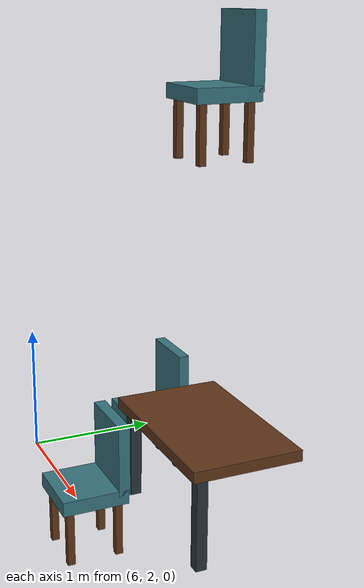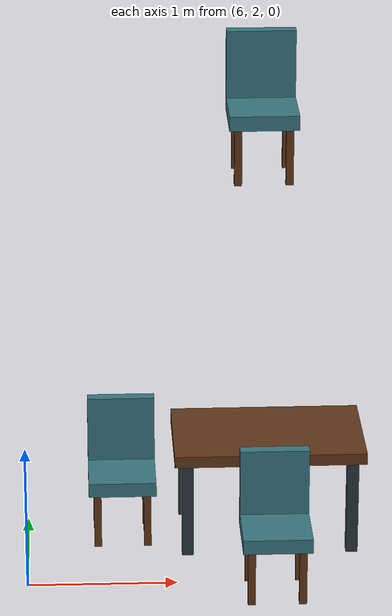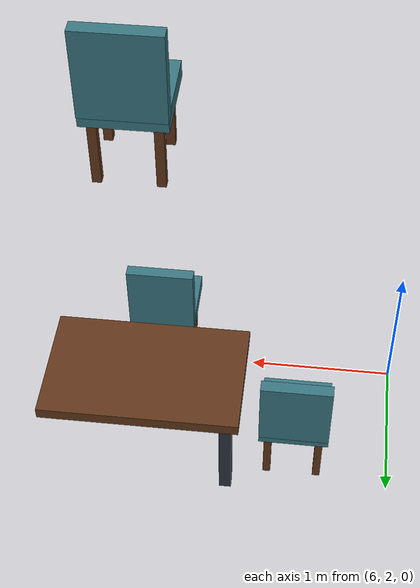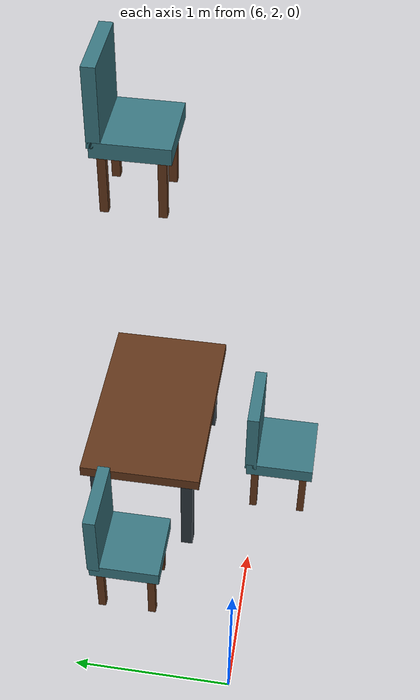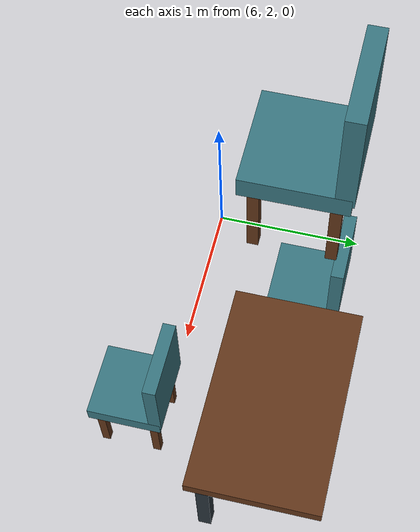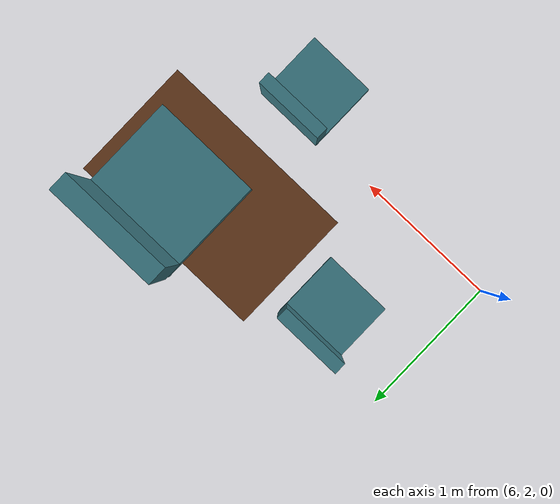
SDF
<sdf version="1.7">
 <model name="home_indoor">
  <static>true</static>
  <link name="dining_top">
   <pose>7.65 2.75 0.72 0 0 0</pose>
   <collision name="dining_top_collision">
    <geometry><box><size>1.3 0.8 0.08</size></box></geometry>
    <surface><friction><ode><mu>1.0</mu><mu2>1.0</mu2></ode></friction></surface>
   </collision>
   <visual name="dining_top_visual">
    <geometry><box><size>1.3 0.8 0.08</size></box></geometry>
    <material><ambient>0.38 0.21 0.10 1</ambient><diffuse>0.38 0.21 0.10 1</diffuse></material>
   </visual>
  </link>
  <link name="dining_leg_-1_-1">
   <pose>7.09 2.44 0.34 0 0 0</pose>
   <collision name="dining_leg_-1_-1_collision">
    <geometry><box><size>0.08 0.08 0.68</size></box></geometry>
    <surface><friction><ode><mu>1.0</mu><mu2>1.0</mu2></ode></friction></surface>
   </collision>
   <visual name="dining_leg_-1_-1_visual">
    <geometry><box><size>0.08 0.08 0.68</size></box></geometry>
    <material><ambient>0.16 0.20 0.23 1</ambient><diffuse>0.16 0.20 0.23 1</diffuse></material>
   </visual>
  </link>
  <link name="dining_leg_-1_1">
   <pose>7.09 3.06 0.34 0 0 0</pose>
   <collision name="dining_leg_-1_1_collision">
    <geometry><box><size>0.08 0.08 0.68</size></box></geometry>
    <surface><friction><ode><mu>1.0</mu><mu2>1.0</mu2></ode></friction></surface>
   </collision>
   <visual name="dining_leg_-1_1_visual">
    <geometry><box><size>0.08 0.08 0.68</size></box></geometry>
    <material><ambient>0.16 0.20 0.23 1</ambient><diffuse>0.16 0.20 0.23 1</diffuse></material>
   </visual>
  </link>
  <link name="dining_leg_1_-1">
   <pose>8.21 2.44 0.34 0 0 0</pose>
   <collision name="dining_leg_1_-1_collision">
    <geometry><box><size>0.08 0.08 0.68</size></box></geometry>
    <surface><friction><ode><mu>1.0</mu><mu2>1.0</mu2></ode></friction></surface>
   </collision>
   <visual name="dining_leg_1_-1_visual">
    <geometry><box><size>0.08 0.08 0.68</size></box></geometry>
    <material><ambient>0.16 0.20 0.23 1</ambient><diffuse>0.16 0.20 0.23 1</diffuse></material>
   </visual>
  </link>
  <link name="dining_chair_0_seat">
   <pose>6.65 2.75 0.44 0 0 0</pose>
   <collision name="dining_chair_0_seat_collision">
    <geometry><box><size>0.46 0.46 0.1</size></box></geometry>
    <surface><friction><ode><mu>1.0</mu><mu2>1.0</mu2></ode></friction></surface>
   </collision>
   <visual name="dining_chair_0_seat_visual">
    <geometry><box><size>0.46 0.46 0.1</size></box></geometry>
    <material><ambient>0.22 0.46 0.50 1</ambient><diffuse>0.22 0.46 0.50 1</diffuse></material>
   </visual>
  </link>
  <link name="dining_chair_0_back">
   <pose>6.65 2.95 0.7 0 0 0</pose>
   <collision name="dining_chair_0_back_collision">
    <geometry><box><size>0.46 0.08 0.5</size></box></geometry>
    <surface><friction><ode><mu>1.0</mu><mu2>1.0</mu2></ode></friction></surface>
   </collision>
   <visual name="dining_chair_0_back_visual">
    <geometry><box><size>0.46 0.08 0.5</size></box></geometry>
    <material><ambient>0.22 0.46 0.50 1</ambient><diffuse>0.22 0.46 0.50 1</diffuse></material>
   </visual>
  </link>
  <link name="dining_chair_0_leg_-1_-1">
   <pose>6.48 2.58 0.2 0 0 0</pose>
   <collision name="dining_chair_0_leg_-1_-1_collision">
    <geometry><box><size>0.05 0.05 0.4</size></box></geometry>
    <surface><friction><ode><mu>1.0</mu><mu2>1.0</mu2></ode></friction></surface>
   </collision>
   <visual name="dining_chair_0_leg_-1_-1_visual">
    <geometry><box><size>0.05 0.05 0.4</size></box></geometry>
    <material><ambient>0.38 0.21 0.10 1</ambient><diffuse>0.38 0.21 0.10 1</diffuse></material>
   </visual>
  </link>
  <link name="dining_chair_0_leg_-1_1">
   <pose>6.48 2.92 0.2 0 0 0</pose>
   <collision name="dining_chair_0_leg_-1_1_collision">
    <geometry><box><size>0.05 0.05 0.4</size></box></geometry>
    <surface><friction><ode><mu>1.0</mu><mu2>1.0</mu2></ode></friction></surface>
   </collision>
   <visual name="dining_chair_0_leg_-1_1_visual">
    <geometry><box><size>0.05 0.05 0.4</size></box></geometry>
    <material><ambient>0.38 0.21 0.10 1</ambient><diffuse>0.38 0.21 0.10 1</diffuse></material>
   </visual>
  </link>
  <link name="dining_chair_0_leg_1_-1">
   <pose>6.82 2.58 0.2 0 0 0</pose>
   <collision name="dining_chair_0_leg_1_-1_collision">
    <geometry><box><size>0.05 0.05 0.4</size></box></geometry>
    <surface><friction><ode><mu>1.0</mu><mu2>1.0</mu2></ode></friction></surface>
   </collision>
   <visual name="dining_chair_0_leg_1_-1_visual">
    <geometry><box><size>0.05 0.05 0.4</size></box></geometry>
    <material><ambient>0.38 0.21 0.10 1</ambient><diffuse>0.38 0.21 0.10 1</diffuse></material>
   </visual>
  </link>
  <link name="dining_chair_0_leg_1_1">
   <pose>6.82 2.92 0.2 0 0 0</pose>
   <collision name="dining_chair_0_leg_1_1_collision">
    <geometry><box><size>0.05 0.05 0.4</size></box></geometry>
    <surface><friction><ode><mu>1.0</mu><mu2>1.0</mu2></ode></friction></surface>
   </collision>
   <visual name="dining_chair_0_leg_1_1_visual">
    <geometry><box><size>0.05 0.05 0.4</size></box></geometry>
    <material><ambient>0.38 0.21 0.10 1</ambient><diffuse>0.38 0.21 0.10 1</diffuse></material>
   </visual>
  </link>
  <link name="dining_chair_2_seat">
   <pose>7.65 1.85 0.44 0 0 0</pose>
   <collision name="dining_chair_2_seat_collision">
    <geometry><box><size>0.46 0.46 0.1</size></box></geometry>
    <surface><friction><ode><mu>1.0</mu><mu2>1.0</mu2></ode></friction></surface>
   </collision>
   <visual name="dining_chair_2_seat_visual">
    <geometry><box><size>0.46 0.46 0.1</size></box></geometry>
    <material><ambient>0.22 0.46 0.50 1</ambient><diffuse>0.22 0.46 0.50 1</diffuse></material>
   </visual>
  </link>
  <link name="dining_chair_2_back">
   <pose>7.65 2.05 0.7 0 0 0</pose>
   <collision name="dining_chair_2_back_collision">
    <geometry><box><size>0.46 0.08 0.5</size></box></geometry>
    <surface><friction><ode><mu>1.0</mu><mu2>1.0</mu2></ode></friction></surface>
   </collision>
   <visual name="dining_chair_2_back_visual">
    <geometry><box><size>0.46 0.08 0.5</size></box></geometry>
    <material><ambient>0.22 0.46 0.50 1</ambient><diffuse>0.22 0.46 0.50 1</diffuse></material>
   </visual>
  </link>
  <link name="dining_chair_2_leg_-1_-1">
   <pose>7.48 1.68 0.2 0 0 0</pose>
   <collision name="dining_chair_2_leg_-1_-1_collision">
    <geometry><box><size>0.05 0.05 0.4</size></box></geometry>
    <surface><friction><ode><mu>1.0</mu><mu2>1.0</mu2></ode></friction></surface>
   </collision>
   <visual name="dining_chair_2_leg_-1_-1_visual">
    <geometry><box><size>0.05 0.05 0.4</size></box></geometry>
    <material><ambient>0.38 0.21 0.10 1</ambient><diffuse>0.38 0.21 0.10 1</diffuse></material>
   </visual>
  </link>
  <link name="dining_chair_2_leg_-1_1">
   <pose>7.48 2.02 0.2 0 0 0</pose>
   <collision name="dining_chair_2_leg_-1_1_collision">
    <geometry><box><size>0.05 0.05 0.4</size></box></geometry>
    <surface><friction><ode><mu>1.0</mu><mu2>1.0</mu2></ode></friction></surface>
   </collision>
   <visual name="dining_chair_2_leg_-1_1_visual">
    <geometry><box><size>0.05 0.05 0.4</size></box></geometry>
    <material><ambient>0.38 0.21 0.10 1</ambient><diffuse>0.38 0.21 0.10 1</diffuse></material>
   </visual>
  </link>
  <link name="dining_chair_2_leg_1_-1">
   <pose>7.82 1.68 0.2 0 0 0</pose>
   <collision name="dining_chair_2_leg_1_-1_collision">
    <geometry><box><size>0.05 0.05 0.4</size></box></geometry>
    <surface><friction><ode><mu>1.0</mu><mu2>1.0</mu2></ode></friction></surface>
   </collision>
   <visual name="dining_chair_2_leg_1_-1_visual">
    <geometry><box><size>0.05 0.05 0.4</size></box></geometry>
    <material><ambient>0.38 0.21 0.10 1</ambient><diffuse>0.38 0.21 0.10 1</diffuse></material>
   </visual>
  </link>
  <link name="dining_chair_2_leg_1_1">
   <pose>7.82 2.02 0.2 0 0 0</pose>
   <collision name="dining_chair_2_leg_1_1_collision">
    <geometry><box><size>0.05 0.05 0.4</size></box></geometry>
    <surface><friction><ode><mu>1.0</mu><mu2>1.0</mu2></ode></friction></surface>
   </collision>
   <visual name="dining_chair_2_leg_1_1_visual">
    <geometry><box><size>0.05 0.05 0.4</size></box></geometry>
    <material><ambient>0.38 0.21 0.10 1</ambient><diffuse>0.38 0.21 0.10 1</diffuse></material>
   </visual>
  </link>
  <link name="study_chair_seat">
   <pose>7.6 2.8 3.04 0 0 0</pose>
   <collision name="study_chair_seat_collision">
    <geometry><box><size>0.46 0.46 0.1</size></box></geometry>
    <surface><friction><ode><mu>1.0</mu><mu2>1.0</mu2></ode></friction></surface>
   </collision>
   <visual name="study_chair_seat_visual">
    <geometry><box><size>0.46 0.46 0.1</size></box></geometry>
    <material><ambient>0.22 0.46 0.50 1</ambient><diffuse>0.22 0.46 0.50 1</diffuse></material>
   </visual>
  </link>
  <link name="study_chair_back">
   <pose>7.6 3 3.3 0 0 0</pose>
   <collision name="study_chair_back_collision">
    <geometry><box><size>0.46 0.08 0.5</size></box></geometry>
    <surface><friction><ode><mu>1.0</mu><mu2>1.0</mu2></ode></friction></surface>
   </collision>
   <visual name="study_chair_back_visual">
    <geometry><box><size>0.46 0.08 0.5</size></box></geometry>
    <material><ambient>0.22 0.46 0.50 1</ambient><diffuse>0.22 0.46 0.50 1</diffuse></material>
   </visual>
  </link>
  <link name="study_chair_leg_-1_-1">
   <pose>7.43 2.63 2.8 0 0 0</pose>
   <collision name="study_chair_leg_-1_-1_collision">
    <geometry><box><size>0.05 0.05 0.4</size></box></geometry>
    <surface><friction><ode><mu>1.0</mu><mu2>1.0</mu2></ode></friction></surface>
   </collision>
   <visual name="study_chair_leg_-1_-1_visual">
    <geometry><box><size>0.05 0.05 0.4</size></box></geometry>
    <material><ambient>0.38 0.21 0.10 1</ambient><diffuse>0.38 0.21 0.10 1</diffuse></material>
   </visual>
  </link>
  <link name="study_chair_leg_-1_1">
   <pose>7.43 2.97 2.8 0 0 0</pose>
   <collision name="study_chair_leg_-1_1_collision">
    <geometry><box><size>0.05 0.05 0.4</size></box></geometry>
    <surface><friction><ode><mu>1.0</mu><mu2>1.0</mu2></ode></friction></surface>
   </collision>
   <visual name="study_chair_leg_-1_1_visual">
    <geometry><box><size>0.05 0.05 0.4</size></box></geometry>
    <material><ambient>0.38 0.21 0.10 1</ambient><diffuse>0.38 0.21 0.10 1</diffuse></material>
   </visual>
  </link>
  <link name="study_chair_leg_1_-1">
   <pose>7.77 2.63 2.8 0 0 0</pose>
   <collision name="study_chair_leg_1_-1_collision">
    <geometry><box><size>0.05 0.05 0.4</size></box></geometry>
    <surface><friction><ode><mu>1.0</mu><mu2>1.0</mu2></ode></friction></surface>
   </collision>
   <visual name="study_chair_leg_1_-1_visual">
    <geometry><box><size>0.05 0.05 0.4</size></box></geometry>
    <material><ambient>0.38 0.21 0.10 1</ambient><diffuse>0.38 0.21 0.10 1</diffuse></material>
   </visual>
  </link>
  <link name="study_chair_leg_1_1">
   <pose>7.77 2.97 2.8 0 0 0</pose>
   <collision name="study_chair_leg_1_1_collision">
    <geometry><box><size>0.05 0.05 0.4</size></box></geometry>
    <surface><friction><ode><mu>1.0</mu><mu2>1.0</mu2></ode></friction></surface>
   </collision>
   <visual name="study_chair_leg_1_1_visual">
    <geometry><box><size>0.05 0.05 0.4</size></box></geometry>
    <material><ambient>0.38 0.21 0.10 1</ambient><diffuse>0.38 0.21 0.10 1</diffuse></material>
   </visual>
  </link>
 </model>
</sdf>
